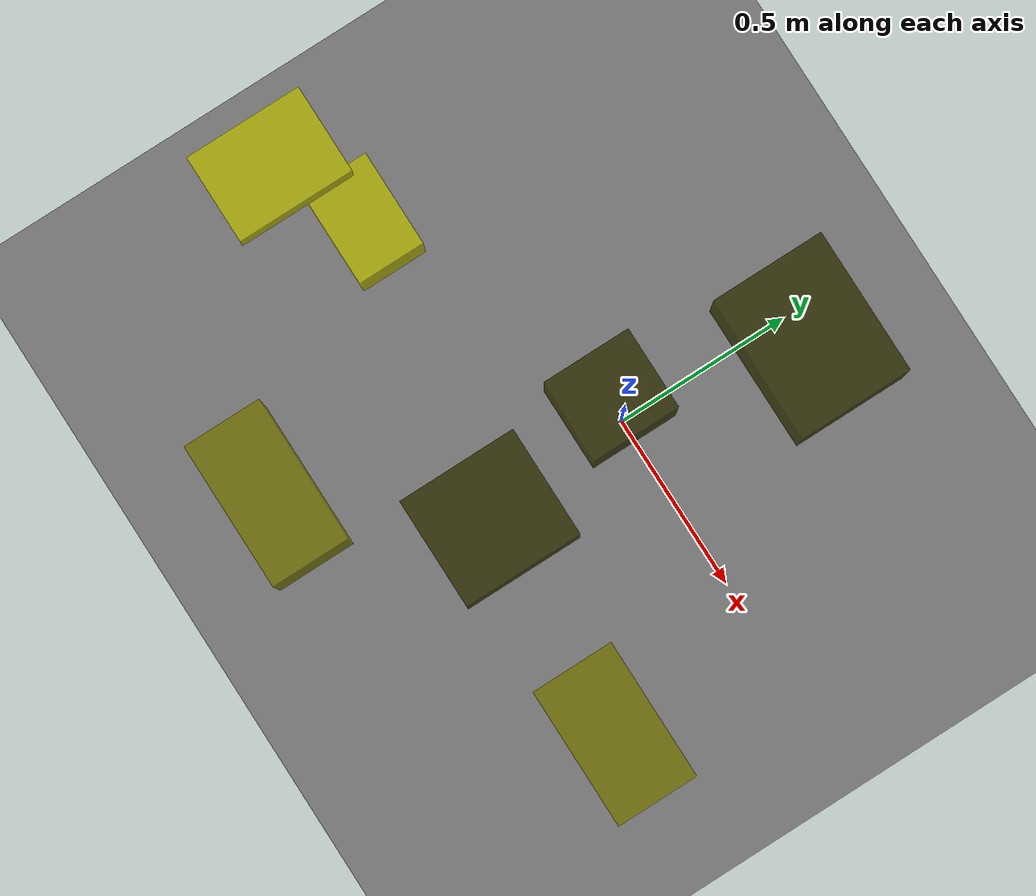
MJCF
<?xml version="1.0"?>
<mujoco model="obstacle_scene">
  <compiler angle="radian" coordinate="local"/>
  <option timestep="0.001" gravity="0 0 -9.81"/>

  <asset>
    <material name="obstacle_mat" rgba="0.8 0.8 0.0 0.8"/>
    <material name="ground_mat" rgba="0.5 0.5 0.5 1"/>
  </asset>

  <worldbody>
    <!-- Ground plane -->
    <geom name="ground" type="plane" size="3 3 0.1" material="ground_mat"/>

    <!-- Obstacles -->
    <body name="obstacle_0" pos="0.111669 0.463014 0.552000">
      <geom name="obs_0" type="box" size="0.199427 0.155181 0.120626" rgba="0.2 0.2 0.0 0.8"/>
    </body>
    <body name="obstacle_1" pos="-0.228360 -0.838614 1.102797">
      <geom name="obs_1" type="box" size="0.188992 0.100631 0.119360" rgba="0.5 0.5 0.0 0.8"/>
    </body>
    <body name="obstacle_2" pos="-0.748310 -0.293776 0.361780">
      <geom name="obs_2" type="box" size="0.134030 0.092713 0.088998" rgba="0.8 0.8 0.0 0.8"/>
    </body>
    <body name="obstacle_3" pos="0.067639 -0.433875 0.649740">
      <geom name="obs_3" type="box" size="0.149762 0.161350 0.096716" rgba="0.2 0.2 0.0 0.8"/>
    </body>
    <body name="obstacle_4" pos="0.662767 -0.462699 0.777538">
      <geom name="obs_4" type="box" size="0.186757 0.109281 0.106029" rgba="0.5 0.5 0.0 0.8"/>
    </body>
    <body name="obstacle_5" pos="-0.871697 -0.428509 1.107485">
      <geom name="obs_5" type="box" size="0.115573 0.152726 0.038743" rgba="0.8 0.8 0.0 0.8"/>
    </body>
    <body name="obstacle_6" pos="0.004249 -0.054788 1.057597">
      <geom name="obs_6" type="box" size="0.107017 0.114610 0.123423" rgba="0.2 0.2 0.0 0.8"/>
    </body>
  </worldbody>
</mujoco>
